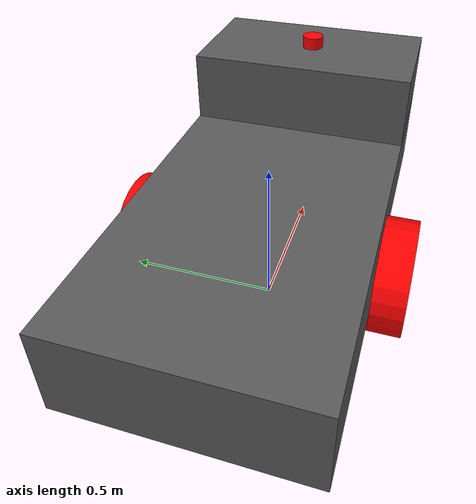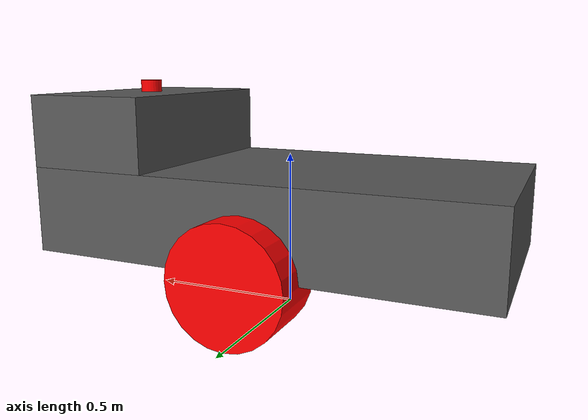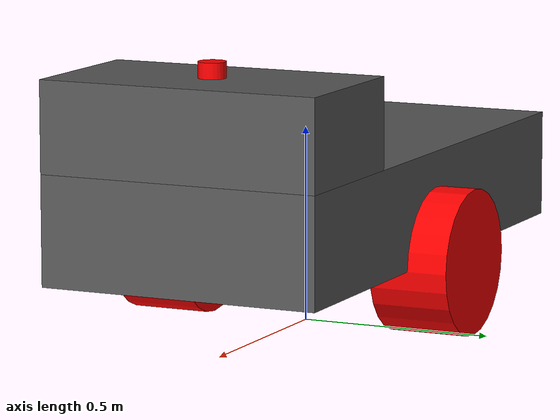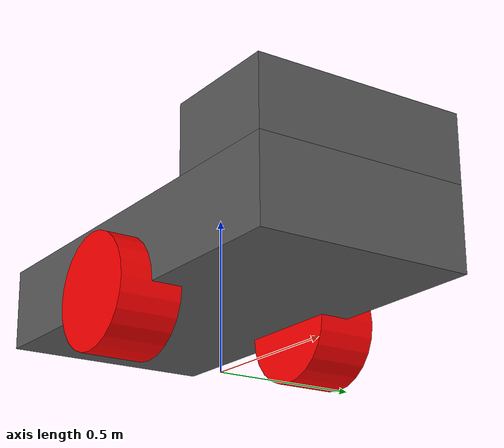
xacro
<?xml version="1.0"?>
<robot xmlns:xacro="http://www.ros.org/wiki/xacro" name="artwa_robot">
    <!-- Material -->
    <material name="Red">
        <color rgba="1 0 0 1.0"/>
    </material>
    <material name="Green">
        <color rgba="0 1 0 1.0"/>
    </material>
    <material name="Blue">
        <color rgba="0 0 1 1.0"/>
    </material>
    <material name="White">
        <color rgba="1 1 1 1.0"/>
    </material>
    <material name="Black">
        <color rgba="0 0 0 1.0"/>
    </material>
    <material name="Gray">
        <color rgba="0.35 0.35 0.35 1.0"/>
    </material>

    <!-- Inertia Macros -->
    <xacro:macro name="box_inertia" params="mass length width height">
        <inertial>
            <mass value="${mass}" />
            <inertia ixx="${(1/12) * mass * (height*height + width*width)}" ixy="0.0" ixz="0.0"
                     iyy="${(1/12) * mass * (length*length + height*height)}" iyz="0.0"
                     izz="${(1/12) * mass * (length*length + width*width)}" />
        </inertial>
    </xacro:macro>

    <xacro:macro name="cylinder_inertia" params="mass length radius">
        <inertial>
            <mass value="${mass}" />
            <inertia ixx="${(1/12) * mass * (3*radius*radius + length*length)}" ixy="0.0" ixz="0.0"
                     iyy="${(1/12) * mass * (3*radius*radius + length*length)}" iyz="0.0"
                     izz="${(1/2) * mass * (radius*radius)}" />
        </inertial>
    </xacro:macro>

    <!-- Properties -->
    <xacro:property name="full_body_length" value="1.466"/>
    <xacro:property name="full_body_width" value="0.725"/>
    <xacro:property name="full_body_height" value="0.5066"/>

    <xacro:property name="head_length" value="0.4"/>
    <xacro:property name="head_width" value="${full_body_width}"/>
    <xacro:property name="head_height" value="0.23"/>

    <xacro:property name="body_length" value="${full_body_length}"/>
    <xacro:property name="body_width" value="${full_body_width}"/>
    <xacro:property name="body_height" value="${full_body_height - head_height}"/>

    <xacro:property name="wheel_radius" value="0.1858"/>
    <xacro:property name="wheel_length" value="0.205"/>

    <xacro:property name="laser_radius" value="0.035"/>
    <xacro:property name="laser_length" value="0.04"/>

    <!-- Mass Properties -->
    <xacro:property name="body_mass" value="50.0"/>
    <xacro:property name="head_mass" value="20.0"/>
    <xacro:property name="wheel_mass" value="15.0"/>
    <xacro:property name="laser_mass" value="2.0"/>

    <!-- Links -->
    <link name="base_footprint"/>

    <link name="base_link"/>

    <joint name="base_joint" type="fixed">
        <parent link="base_footprint"/>
        <child link="base_link"/>
        <origin xyz="0 0 ${wheel_radius}" />
    </joint>

    <link name="body_link">
        <visual>
            <geometry>
                <box size="${body_length} ${body_width} ${body_height}"/>
            </geometry>
            <origin xyz="${body_length/2} 0.0 ${body_height/2}"/>
            <material name="Gray"/>
        </visual>
        <collision>
            <geometry>
                <box size="${body_length} ${body_width} ${body_height}"/>
            </geometry>
            <origin xyz="${body_length/2} 0.0 ${body_height/2}"/>
        </collision>
        <xacro:box_inertia mass="${body_mass}" length="${body_length}" width="${body_width}" height="${body_height}"/>
    </link>

    <joint name="body_joint" type="fixed">
        <parent link="base_link"/>
        <child link="body_link"/>
        <origin xyz="-${body_length/2} 0 0" />
    </joint>

    <link name="head_link">
        <visual>
            <geometry>
                <box size="${head_length} ${head_width} ${head_height}"/>
            </geometry>
            <origin xyz="${head_length/2} 0.0 ${head_height/2}"/>
            <material name="Gray"/>
        </visual>
        <collision>
            <geometry>
                <box size="${head_length} ${head_width} ${head_height}"/>
            </geometry>
            <origin xyz="${head_length/2} 0.0 ${head_height/2}"/>
        </collision>
        <xacro:box_inertia mass="${head_mass}" length="${head_length}" width="${head_width}" height="${head_height}"/>
    </link>

    <joint name="head_joint" type="fixed">
        <parent link="body_link"/>
        <child link="head_link"/>
        <origin xyz="${full_body_length - head_length} 0.0 ${full_body_height - head_height}"/>
    </joint>

    <link name="right_wheel_link">
        <visual>
            <geometry>
                <cylinder length="${wheel_length}" radius="${wheel_radius}"/>
            </geometry>
            <material name="Red" />
        </visual>
        <collision>
            <geometry>
                <cylinder length="${wheel_length}" radius="${wheel_radius}"/>
            </geometry>
        </collision>
        <xacro:cylinder_inertia mass="${wheel_mass}" length="${wheel_length}" radius="${wheel_radius}"/>
    </link>

    <joint name="right_wheel_joint" type="continuous">
        <parent link="base_link"/>
        <child link="right_wheel_link"/>
        <origin xyz="0 ${body_width/2} 0" rpy="-${pi/2} 0 0"/>
        <axis xyz="0 0 1"/>
    </joint>

    <link name="left_wheel_link">
        <visual>
            <geometry>
                <cylinder length="${wheel_length}" radius="${wheel_radius}"/>
            </geometry>
            <material name="Red" />
        </visual>
        <collision>
            <geometry>
                <cylinder length="${wheel_length}" radius="${wheel_radius}"/>
            </geometry>
        </collision>
        <xacro:cylinder_inertia mass="${wheel_mass}" length="${wheel_length}" radius="${wheel_radius}"/>
    </link>

    <joint name="left_wheel_joint" type="continuous">
        <parent link="base_link"/>
        <child link="left_wheel_link"/>
        <origin xyz="0 -${body_width/2} 0" rpy="-${pi/2} 0 0"/>
        <axis xyz="0 0 1"/>
    </joint>

    <link name="laser_link">
        <visual>
            <geometry>
                <cylinder length="${laser_length}" radius="${laser_radius}"/>
            </geometry>
            <origin xyz="0.0 0.0 ${laser_length/2}"/>
            <material name="Red"/>
        </visual>
        <xacro:cylinder_inertia mass="${laser_mass}" length="${laser_length}" radius="${laser_radius}"/>
    </link>

    <joint name="laser_joint" type="fixed">
        <parent link="head_link"/>
        <child link="laser_link"/>
        <origin xyz="${head_length/2} 0.0 ${head_height}"/>
    </joint>

    <link name="laser"/>

    <joint name="real_laser_joint" type="fixed">
        <parent link="laser_link"/>
        <child link="laser"/>
        <origin xyz="0.0 0.0 -${full_body_height + wheel_radius}" rpy="0 0 ${pi}"/>
    </joint>
</robot>
